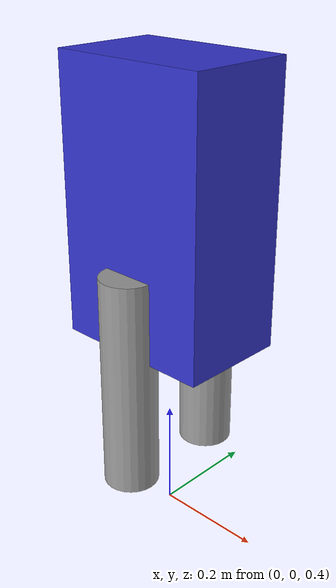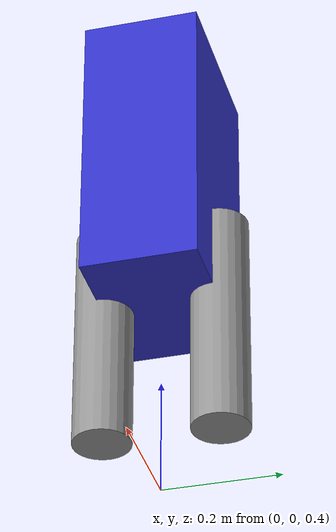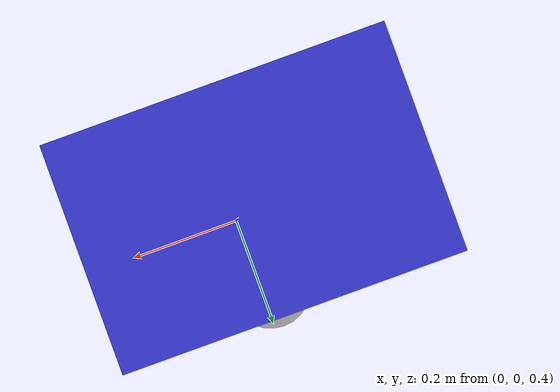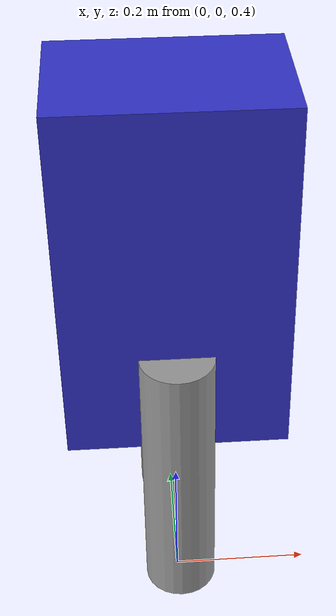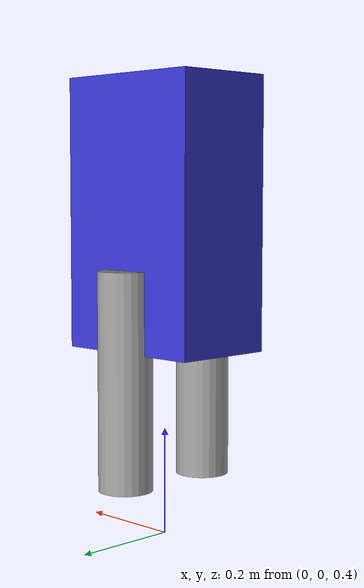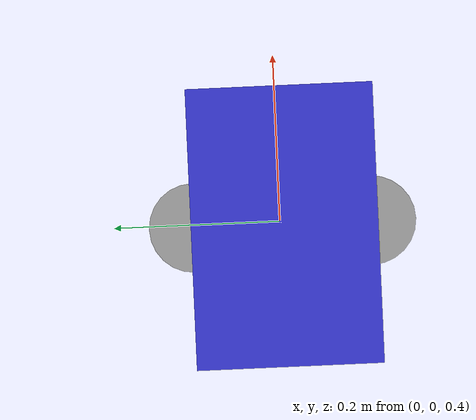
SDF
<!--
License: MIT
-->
<?xml version="1.0"?>
<sdf version="1.8">
  <model name="simple_biped">
    <static>false</static>

    <!-- Base Link (Torso) -->
    <link name="torso">
      <pose>0 0 1.0 0 0 0</pose>

      <inertial>
        <mass>10.0</mass>
        <inertia>
          <ixx>0.1</ixx>
          <ixy>0</ixy>
          <ixz>0</ixz>
          <iyy>0.1</iyy>
          <iyz>0</iyz>
          <izz>0.05</izz>
        </inertia>
      </inertial>

      <collision name="torso_collision">
        <geometry>
          <box>
            <size>0.3 0.2 0.5</size>
          </box>
        </geometry>
      </collision>

      <visual name="torso_visual">
        <geometry>
          <box>
            <size>0.3 0.2 0.5</size>
          </box>
        </geometry>
        <material>
          <ambient>0.2 0.2 0.8 1.0</ambient>
          <diffuse>0.2 0.2 0.8 1.0</diffuse>
        </material>
      </visual>
    </link>

    <!-- Left Thigh -->
    <link name="left_thigh">
      <pose>0 0.1 0.7 0 0 0</pose>

      <inertial>
        <mass>2.0</mass>
        <inertia>
          <ixx>0.02</ixx>
          <ixy>0</ixy>
          <ixz>0</ixz>
          <iyy>0.02</iyy>
          <iyz>0</iyz>
          <izz>0.005</izz>
        </inertia>
      </inertial>

      <collision name="left_thigh_collision">
        <geometry>
          <cylinder>
            <radius>0.05</radius>
            <length>0.4</length>
          </cylinder>
        </geometry>
      </collision>

      <visual name="left_thigh_visual">
        <geometry>
          <cylinder>
            <radius>0.05</radius>
            <length>0.4</length>
          </cylinder>
        </geometry>
        <material>
          <ambient>0.6 0.6 0.6 1.0</ambient>
          <diffuse>0.6 0.6 0.6 1.0</diffuse>
        </material>
      </visual>
    </link>

    <!-- Right Thigh -->
    <link name="right_thigh">
      <pose>0 -0.1 0.7 0 0 0</pose>

      <inertial>
        <mass>2.0</mass>
        <inertia>
          <ixx>0.02</ixx>
          <ixy>0</ixy>
          <ixz>0</ixz>
          <iyy>0.02</iyy>
          <iyz>0</iyz>
          <izz>0.005</izz>
        </inertia>
      </inertial>

      <collision name="right_thigh_collision">
        <geometry>
          <cylinder>
            <radius>0.05</radius>
            <length>0.4</length>
          </cylinder>
        </geometry>
      </collision>

      <visual name="right_thigh_visual">
        <geometry>
          <cylinder>
            <radius>0.05</radius>
            <length>0.4</length>
          </cylinder>
        </geometry>
        <material>
          <ambient>0.6 0.6 0.6 1.0</ambient>
          <diffuse>0.6 0.6 0.6 1.0</diffuse>
        </material>
      </visual>
    </link>

    <!-- Left Hip Joint -->
    <joint name="left_hip" type="revolute">
      <parent>torso</parent>
      <child>left_thigh</child>
      <pose>0 0 0.2 0 0 0</pose>
      <axis>
        <xyz>0 1 0</xyz>
        <limit>
          <lower>-1.57</lower>
          <upper>1.57</upper>
          <effort>100</effort>
          <velocity>2.0</velocity>
        </limit>
        <dynamics>
          <damping>0.1</damping>
          <friction>0.0</friction>
        </dynamics>
      </axis>
    </joint>

    <!-- Right Hip Joint -->
    <joint name="right_hip" type="revolute">
      <parent>torso</parent>
      <child>right_thigh</child>
      <pose>0 0 0.2 0 0 0</pose>
      <axis>
        <xyz>0 1 0</xyz>
        <limit>
          <lower>-1.57</lower>
          <upper>1.57</upper>
          <effort>100</effort>
          <velocity>2.0</velocity>
        </limit>
        <dynamics>
          <damping>0.1</damping>
          <friction>0.0</friction>
        </dynamics>
      </axis>
    </joint>

  </model>
</sdf>
